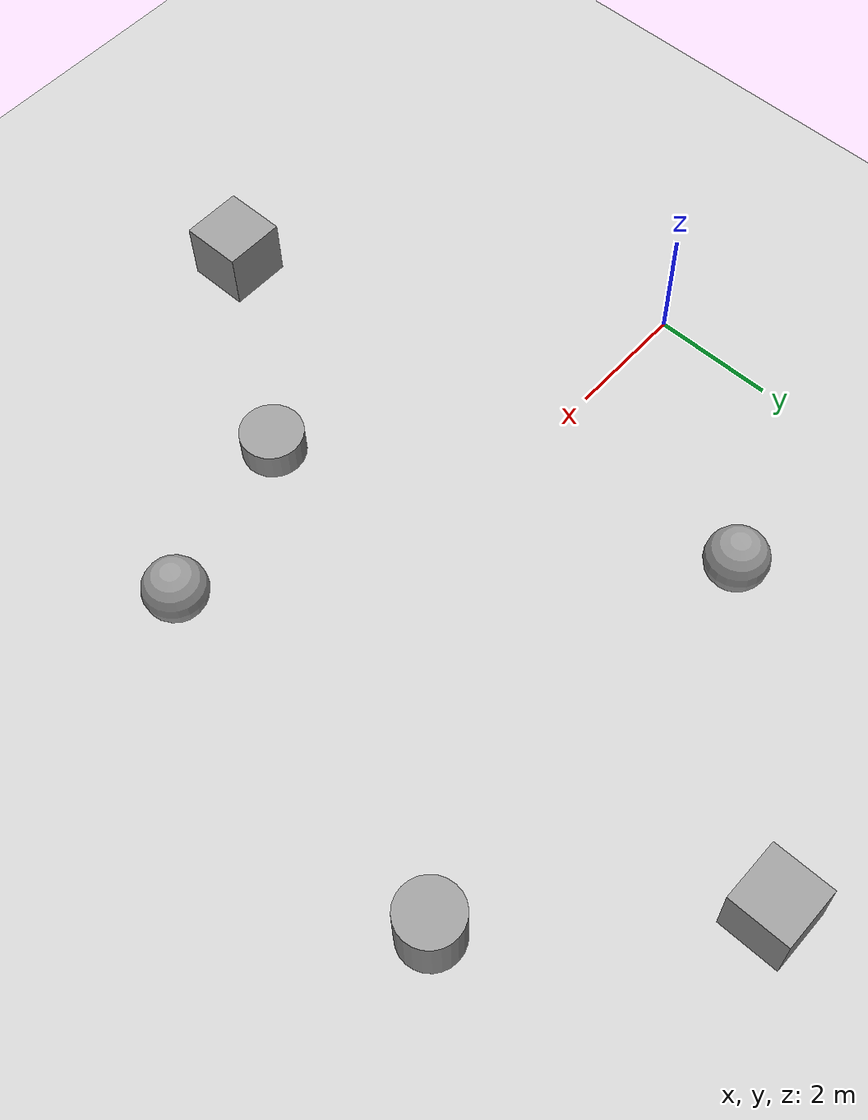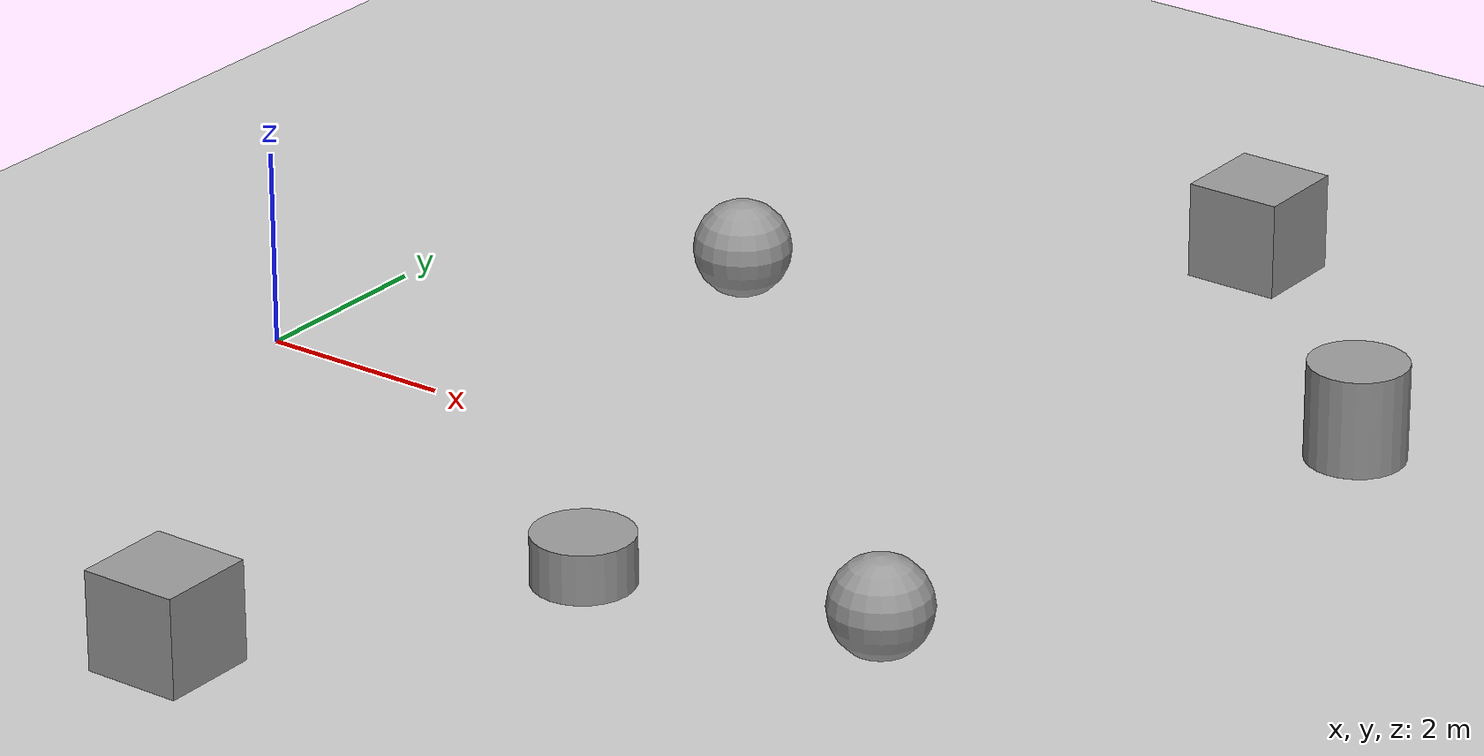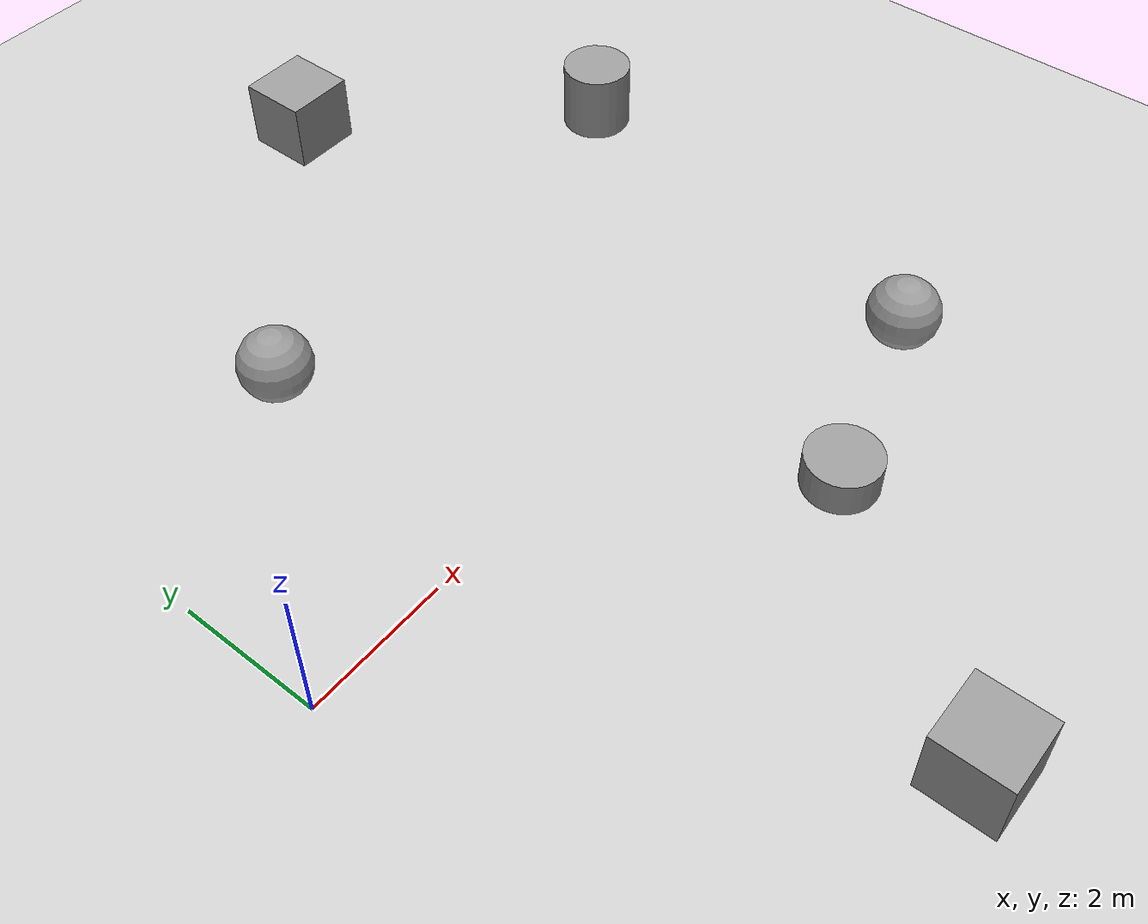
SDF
<sdf version='1.7'>
  <world name='default'>
    <scene>
      <sky>
        <ambient>0.5 0.7 1.0 1.0</ambient>
      </sky>
    </scene>
    <light name='sun' type='directional'>
      <cast_shadows>1</cast_shadows>
      <pose>0 0 10 0 -0 0</pose>
      <diffuse>0.8 0.8 0.8 1</diffuse>
      <specular>0.2 0.2 0.2 1</specular>
      <attenuation>
        <range>1000</range>
        <constant>0.9</constant>
        <linear>0.01</linear>
        <quadratic>0.001</quadratic>
      </attenuation>
      <direction>-0.5 0.1 -0.9</direction>
      <spot>
        <inner_angle>0</inner_angle>
        <outer_angle>0</outer_angle>
        <falloff>0</falloff>
      </spot>
    </light>
    <model name='ground_plane'>
      <static>1</static>
      <link name='link'>
        <collision name='collision'>
          <geometry>
            <plane>
              <normal>0 0 1</normal>
              <size>100 100</size>
            </plane>
          </geometry>
          <surface>
            <contact>
              <collide_bitmask>65535</collide_bitmask>
              <ode/>
            </contact>
            <friction>
              <ode>
                <mu>100</mu>
                <mu2>50</mu2>
              </ode>
              <torsional>
                <ode/>
              </torsional>
            </friction>
            <bounce/>
          </surface>
          <max_contacts>10</max_contacts>
        </collision>
        <visual name='visual'>
          <cast_shadows>0</cast_shadows>
          <geometry>
            <plane>
              <normal>0 0 1</normal>
              <size>100 100</size>
            </plane>
          </geometry>
          <material>
            <script>
              <uri>file://media/materials/scripts/gazebo.material</uri>
              <name>Gazebo/Grey</name>
            </script>
          </material>
        </visual>
        <self_collide>0</self_collide>
        <enable_wind>0</enable_wind>
        <kinematic>0</kinematic>
      </link>
    </model>
    <gravity>0 0 -9.8</gravity>
    <magnetic_field>6e-06 2.3e-05 -4.2e-05</magnetic_field>
    <atmosphere type='adiabatic'/>
    <physics type='ode'>
      <max_step_size>0.001</max_step_size>
      <real_time_factor>1</real_time_factor>
      <real_time_update_rate>1000</real_time_update_rate>
    </physics>
    <scene>
      <ambient>0.4 0.4 0.4 1</ambient>
      <background>0.7 0.7 0.7 1</background>
      <shadows>1</shadows>
    </scene>
    <wind/>
    <spherical_coordinates>
      <surface_model>EARTH_WGS84</surface_model>
      <latitude_deg>0</latitude_deg>
      <longitude_deg>0</longitude_deg>
      <elevation>0</elevation>
      <heading_deg>0</heading_deg>
    </spherical_coordinates>
    <model name='unit_sphere'>
      <pose>3.01659 3.66741 0.5 0 -0 0</pose>
      <link name='link'>
        <inertial>
          <mass>1</mass>
          <inertia>
            <ixx>0.001</ixx>
            <iyy>0.001</iyy>
            <izz>0.001</izz>
            <ixy>0.0</ixy>
            <ixz>0.0</ixz>
            <iyz>0.0</iyz>
          </inertia>
          <pose>0 0 0 0 -0 0</pose>
        </inertial>
        <collision name='collision'>
          <geometry>
            <sphere>
              <radius>0.5</radius>
            </sphere>
          </geometry>
          <max_contacts>10</max_contacts>
          <surface>
            <contact>
              <ode/>
            </contact>
            <bounce/>
            <friction>
              <torsional>
                <ode/>
              </torsional>
              <ode/>
            </friction>
          </surface>
        </collision>
        <visual name='visual'>
          <geometry>
            <sphere>
              <radius>0.5</radius>
            </sphere>
          </geometry>
          <material>
            <script>
              <name>Gazebo/Grey</name>
              <uri>file://media/materials/scripts/gazebo.material</uri>
            </script>
          </material>
        </visual>
        <self_collide>0</self_collide>
        <enable_wind>0</enable_wind>
        <kinematic>0</kinematic>
      </link>
    </model>
    <model name='unit_box'>
      <pose>3.7705 -6.0 0.5 0 -0 0</pose>
      <link name='link'>
        <inertial>
          <mass>1</mass>
          <inertia>
            <ixx>0.166667</ixx>
            <ixy>0</ixy>
            <ixz>0</ixz>
            <iyy>0.166667</iyy>
            <iyz>0</iyz>
            <izz>0.166667</izz>
          </inertia>
          <pose>0 0 0 0 -0 0</pose>
        </inertial>
        <collision name='collision'>
          <geometry>
            <box>
              <size>1 1 1</size>
            </box>
          </geometry>
          <max_contacts>10</max_contacts>
          <surface>
            <contact>
              <ode/>
            </contact>
            <bounce/>
            <friction>
              <torsional>
                <ode/>
              </torsional>
              <ode/>
            </friction>
          </surface>
        </collision>
        <visual name='visual'>
          <geometry>
            <box>
              <size>1 1 1</size>
            </box>
          </geometry>
          <material>
            <script>
              <name>Gazebo/Grey</name>
              <uri>file://media/materials/scripts/gazebo.material</uri>
            </script>
          </material>
        </visual>
        <self_collide>0</self_collide>
        <enable_wind>0</enable_wind>
        <kinematic>0</kinematic>
      </link>
    </model>
    <model name='unit_cylinder'>
      <pose>6.05207 -2.85998 0.5 0 -0 0</pose>
      <link name='link'>
        <inertial>
          <mass>1</mass>
          <inertia>
            <ixx>0.145833</ixx>
            <ixy>0</ixy>
            <ixz>0</ixz>
            <iyy>0.145833</iyy>
            <iyz>0</iyz>
            <izz>0.125</izz>
          </inertia>
          <pose>0 0 0 0 -0 0</pose>
        </inertial>
        <collision name='collision'>
          <geometry>
            <cylinder>
              <radius>0.5</radius>
              <length>0.5</length>
            </cylinder>
          </geometry>
          <max_contacts>10</max_contacts>
          <surface>
            <contact>
              <ode/>
            </contact>
            <bounce/>
            <friction>
              <torsional>
                <ode/>
              </torsional>
              <ode/>
            </friction>
          </surface>
        </collision>
        <visual name='visual'>
          <geometry>
            <cylinder>
              <radius>0.5</radius>
              <length>0.5</length>
            </cylinder>
          </geometry>
          <material>
            <script>
              <name>Gazebo/Grey</name>
              <uri>file://media/materials/scripts/gazebo.material</uri>
            </script>
          </material>
        </visual>
        <self_collide>0</self_collide>
        <enable_wind>0</enable_wind>
        <kinematic>0</kinematic>
      </link>
    </model>
    <model name='unit_sphere_0'>
      <pose>8.81389 -2.08254 0.5 0 -0 0</pose>
      <link name='link'>
        <inertial>
          <mass>1</mass>
          <inertia>
            <ixx>0.1</ixx>
            <ixy>0</ixy>
            <ixz>0</ixz>
            <iyy>0.1</iyy>
            <iyz>0</iyz>
            <izz>0.1</izz>
          </inertia>
          <pose>0 0 0 0 -0 0</pose>
        </inertial>
        <collision name='collision'>
          <geometry>
            <sphere>
              <radius>0.5</radius>
            </sphere>
          </geometry>
          <max_contacts>10</max_contacts>
          <surface>
            <contact>
              <ode/>
            </contact>
            <bounce/>
            <friction>
              <torsional>
                <ode/>
              </torsional>
              <ode/>
            </friction>
          </surface>
        </collision>
        <visual name='visual'>
          <geometry>
            <sphere>
              <radius>0.5</radius>
            </sphere>
          </geometry>
          <material>
            <script>
              <name>Gazebo/Grey</name>
              <uri>file://media/materials/scripts/gazebo.material</uri>
            </script>
          </material>
        </visual>
        <self_collide>0</self_collide>
        <enable_wind>0</enable_wind>
        <kinematic>0</kinematic>
      </link>
    </model>
    <model name='unit_box_0'>
      <pose>6.87648 7.2 0.5 0 -0 0</pose>
      <link name='link'>
        <inertial>
          <mass>1</mass>
          <inertia>
            <ixx>0.166667</ixx>
            <ixy>0</ixy>
            <ixz>0</ixz>
            <iyy>0.166667</iyy>
            <iyz>0</iyz>
            <izz>0.166667</izz>
          </inertia>
          <pose>0 0 0 0 -0 0</pose>
        </inertial>
        <collision name='collision'>
          <geometry>
            <box>
              <size>1 1 1</size>
            </box>
          </geometry>
          <max_contacts>10</max_contacts>
          <surface>
            <contact>
              <ode/>
            </contact>
            <bounce/>
            <friction>
              <torsional>
                <ode/>
              </torsional>
              <ode/>
            </friction>
          </surface>
        </collision>
        <visual name='visual'>
          <geometry>
            <box>
              <size>1 1 1</size>
            </box>
          </geometry>
          <material>
            <script>
              <name>Gazebo/Grey</name>
              <uri>file://media/materials/scripts/gazebo.material</uri>
            </script>
          </material>
        </visual>
        <self_collide>0</self_collide>
        <enable_wind>0</enable_wind>
        <kinematic>0</kinematic>
      </link>
    </model>
    <model name='unit_cylinder_0'>
      <pose>10.0302 4.00978 0.5 0 -0 0</pose>
      <link name='link'>
        <inertial>
          <mass>1</mass>
          <inertia>
            <ixx>0.145833</ixx>
            <ixy>0</ixy>
            <ixz>0</ixz>
            <iyy>0.145833</iyy>
            <iyz>0</iyz>
            <izz>0.125</izz>
          </inertia>
          <pose>0 0 0 0 -0 0</pose>
        </inertial>
        <collision name='collision'>
          <geometry>
            <cylinder>
              <radius>0.5</radius>
              <length>1</length>
            </cylinder>
          </geometry>
          <max_contacts>10</max_contacts>
          <surface>
            <contact>
              <ode/>
            </contact>
            <bounce/>
            <friction>
              <torsional>
                <ode/>
              </torsional>
              <ode/>
            </friction>
          </surface>
        </collision>
        <visual name='visual'>
          <geometry>
            <cylinder>
              <radius>0.5</radius>
              <length>1</length>
            </cylinder>
          </geometry>
          <material>
            <script>
              <name>Gazebo/Grey</name>
              <uri>file://media/materials/scripts/gazebo.material</uri>
            </script>
          </material>
        </visual>
        <self_collide>0</self_collide>
        <enable_wind>0</enable_wind>
        <kinematic>0</kinematic>
      </link>
    </model>
    <gui fullscreen='0'>
      <camera name='user_camera'>
        <pose>16.2105 -9.49121 5.05092 0 0.275643 2.35619</pose>
        <view_controller>orbit</view_controller>
        <projection_type>perspective</projection_type>
      </camera>
    </gui>
  </world>
</sdf>
